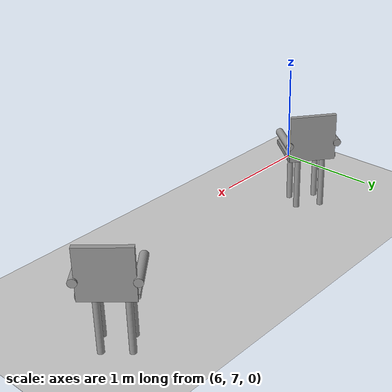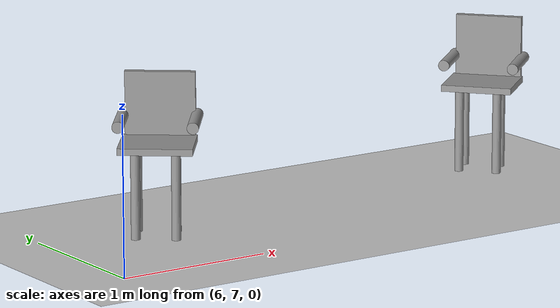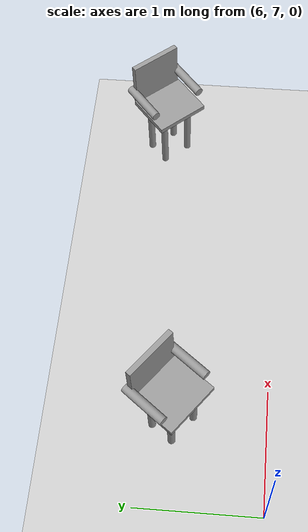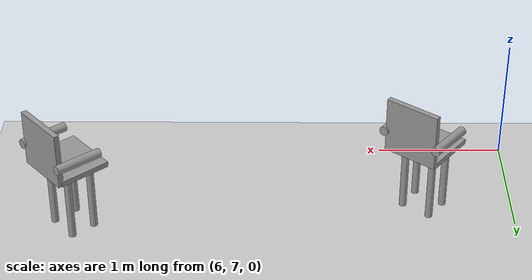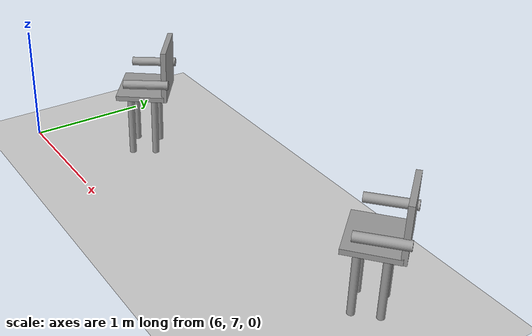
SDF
<sdf version="1.6">
 <world name="default">
  <model name="ground_plane">
   <static>1</static>
   <link name="link">
    <collision name="collision">
     <geometry><plane><normal>0 0 1</normal><size>100 100</size></plane></geometry>
     <surface>
      <contact><collide_bitmask>65535</collide_bitmask></contact>
      <friction><ode><mu>100</mu><mu2>50</mu2></ode></friction>
     </surface>
    </collision>
    <visual name="visual">
     <cast_shadows>0</cast_shadows>
     <geometry><plane><normal>0 0 1</normal><size>100 100</size></plane></geometry>
     <material>
      <script><uri>file://media/materials/scripts/gazebo.material</uri><name>Gazebo/Grey</name></script>
     </material>
    </visual>
   </link>
  </model>
  <model name="chair_clone_clone_0">
   <link name="link_4">
    <inertial>
     <mass>0.00194051</mass>
     <inertia>
      <ixx>5.14044e-05</ixx>
      <ixy>0</ixy>
      <ixz>0</ixz>
      <iyy>5.14044e-05</iyy>
      <iyz>0</iyz>
      <izz>8.34973e-07</izz>
     </inertia>
    </inertial>
    <pose>-0.140129 -0.127166 -0.209129 0 -0 0</pose>
    <visual name="visual">
     <geometry><cylinder><radius>0.0293355</radius><length>0.561516</length></cylinder></geometry>
     <material>
      <lighting>1</lighting>
      <script><uri>file://media/materials/scripts/gazebo.material</uri><name>Gazebo/Grey</name></script>
      <emissive>0 0 0 1</emissive>
     </material>
    </visual>
    <collision name="collision">
     <geometry><cylinder><radius>0.029336</radius><length>0.561516</length></cylinder></geometry>
     <surface>
      <friction>
       <ode><mu>1</mu><mu2>1</mu2><fdir1>0 0 0</fdir1><slip1>0</slip1><slip2>0</slip2></ode>
       <torsional>
        <coefficient>1</coefficient>
        <patch_radius>0</patch_radius>
        <surface_radius>0</surface_radius>
        <use_patch_radius>1</use_patch_radius>
        <ode><slip>0</slip></ode>
       </torsional>
      </friction>
      <bounce><restitution_coefficient>0</restitution_coefficient><threshold>1e+06</threshold></bounce>
      <contact>
       <collide_without_contact>0</collide_without_contact>
       <collide_without_contact_bitmask>1</collide_without_contact_bitmask>
       <collide_bitmask>1</collide_bitmask>
       <ode>
        <soft_cfm>0</soft_cfm>
        <soft_erp>0.2</soft_erp>
        <kp>1e+13</kp>
        <kd>1</kd>
        <max_vel>0.01</max_vel>
        <min_depth>0</min_depth>
       </ode>
       <bullet>
        <split_impulse>1</split_impulse>
        <split_impulse_penetration_threshold>-0.01</split_impulse_penetration_threshold>
        <soft_cfm>0</soft_cfm>
        <soft_erp>0.2</soft_erp>
        <kp>1e+13</kp>
        <kd>1</kd>
       </bullet>
      </contact>
     </surface>
    </collision>
   </link>
   <link name="link_4_clone">
    <inertial>
     <mass>0.00194051</mass>
     <inertia>
      <ixx>5.14044e-05</ixx>
      <ixy>0</ixy>
      <ixz>0</ixz>
      <iyy>5.14044e-05</iyy>
      <iyz>0</iyz>
      <izz>8.34973e-07</izz>
     </inertia>
    </inertial>
    <pose>-0.139565 0.126187 -0.209129 0 -0 0</pose>
    <visual name="visual">
     <geometry><cylinder><radius>0.0293355</radius><length>0.561516</length></cylinder></geometry>
     <material>
      <lighting>1</lighting>
      <script><uri>file://media/materials/scripts/gazebo.material</uri><name>Gazebo/Grey</name></script>
      <shader type="pixel"/>
      <emissive>0 0 0 1</emissive>
     </material>
    </visual>
    <collision name="collision">
     <geometry><cylinder><radius>0.029336</radius><length>0.561516</length></cylinder></geometry>
     <surface>
      <friction>
       <ode><mu>1</mu><mu2>1</mu2><fdir1>0 0 0</fdir1><slip1>0</slip1><slip2>0</slip2></ode>
       <torsional>
        <coefficient>1</coefficient>
        <patch_radius>0</patch_radius>
        <surface_radius>0</surface_radius>
        <use_patch_radius>1</use_patch_radius>
        <ode><slip>0</slip></ode>
       </torsional>
      </friction>
      <bounce><restitution_coefficient>0</restitution_coefficient><threshold>1e+06</threshold></bounce>
      <contact>
       <collide_without_contact>0</collide_without_contact>
       <collide_without_contact_bitmask>1</collide_without_contact_bitmask>
       <collide_bitmask>1</collide_bitmask>
       <ode>
        <soft_cfm>0</soft_cfm>
        <soft_erp>0.2</soft_erp>
        <kp>1e+13</kp>
        <kd>1</kd>
        <max_vel>0.01</max_vel>
        <min_depth>0</min_depth>
       </ode>
       <bullet>
        <split_impulse>1</split_impulse>
        <split_impulse_penetration_threshold>-0.01</split_impulse_penetration_threshold>
        <soft_cfm>0</soft_cfm>
        <soft_erp>0.2</soft_erp>
        <kp>1e+13</kp>
        <kd>1</kd>
       </bullet>
      </contact>
     </surface>
    </collision>
   </link>
   <link name="link_4_clone_0">
    <inertial>
     <mass>0.00194051</mass>
     <inertia>
      <ixx>5.14044e-05</ixx>
      <ixy>0</ixy>
      <ixz>0</ixz>
      <iyy>5.14044e-05</iyy>
      <iyz>0</iyz>
      <izz>8.34973e-07</izz>
     </inertia>
    </inertial>
    <pose>0.062929 0.13105 -0.209129 0 -0 0</pose>
    <visual name="visual">
     <geometry><cylinder><radius>0.0293355</radius><length>0.561516</length></cylinder></geometry>
     <material>
      <lighting>1</lighting>
      <script><uri>file://media/materials/scripts/gazebo.material</uri><name>Gazebo/Grey</name></script>
      <shader type="pixel"/>
      <emissive>0 0 0 1</emissive>
     </material>
    </visual>
    <collision name="collision">
     <geometry><cylinder><radius>0.029336</radius><length>0.561516</length></cylinder></geometry>
     <surface>
      <friction>
       <ode><mu>1</mu><mu2>1</mu2><fdir1>0 0 0</fdir1><slip1>0</slip1><slip2>0</slip2></ode>
       <torsional>
        <coefficient>1</coefficient>
        <patch_radius>0</patch_radius>
        <surface_radius>0</surface_radius>
        <use_patch_radius>1</use_patch_radius>
        <ode><slip>0</slip></ode>
       </torsional>
      </friction>
      <bounce><restitution_coefficient>0</restitution_coefficient><threshold>1e+06</threshold></bounce>
      <contact>
       <collide_without_contact>0</collide_without_contact>
       <collide_without_contact_bitmask>1</collide_without_contact_bitmask>
       <collide_bitmask>1</collide_bitmask>
       <ode>
        <soft_cfm>0</soft_cfm>
        <soft_erp>0.2</soft_erp>
        <kp>1e+13</kp>
        <kd>1</kd>
        <max_vel>0.01</max_vel>
        <min_depth>0</min_depth>
       </ode>
       <bullet>
        <split_impulse>1</split_impulse>
        <split_impulse_penetration_threshold>-0.01</split_impulse_penetration_threshold>
        <soft_cfm>0</soft_cfm>
        <soft_erp>0.2</soft_erp>
        <kp>1e+13</kp>
        <kd>1</kd>
       </bullet>
      </contact>
     </surface>
    </collision>
   </link>
   <link name="link_4_clone_1">
    <inertial>
     <mass>0.00194051</mass>
     <inertia>
      <ixx>5.14044e-05</ixx>
      <ixy>0</ixy>
      <ixz>0</ixz>
      <iyy>5.14044e-05</iyy>
      <iyz>0</iyz>
      <izz>8.34973e-07</izz>
     </inertia>
    </inertial>
    <pose>0.061641 -0.111934 -0.209129 0 -0 0</pose>
    <visual name="visual">
     <geometry><cylinder><radius>0.0293355</radius><length>0.561516</length></cylinder></geometry>
     <material>
      <lighting>1</lighting>
      <script><uri>file://media/materials/scripts/gazebo.material</uri><name>Gazebo/Grey</name></script>
      <shader type="pixel"/>
      <emissive>0 0 0 1</emissive>
     </material>
    </visual>
    <collision name="collision">
     <geometry><cylinder><radius>0.029336</radius><length>0.561516</length></cylinder></geometry>
     <surface>
      <friction>
       <ode><mu>1</mu><mu2>1</mu2><fdir1>0 0 0</fdir1><slip1>0</slip1><slip2>0</slip2></ode>
       <torsional>
        <coefficient>1</coefficient>
        <patch_radius>0</patch_radius>
        <surface_radius>0</surface_radius>
        <use_patch_radius>1</use_patch_radius>
        <ode><slip>0</slip></ode>
       </torsional>
      </friction>
      <bounce><restitution_coefficient>0</restitution_coefficient><threshold>1e+06</threshold></bounce>
      <contact>
       <collide_without_contact>0</collide_without_contact>
       <collide_without_contact_bitmask>1</collide_without_contact_bitmask>
       <collide_bitmask>1</collide_bitmask>
       <ode>
        <soft_cfm>0</soft_cfm>
        <soft_erp>0.2</soft_erp>
        <kp>1e+13</kp>
        <kd>1</kd>
        <max_vel>0.01</max_vel>
        <min_depth>0</min_depth>
       </ode>
       <bullet>
        <split_impulse>1</split_impulse>
        <split_impulse_penetration_threshold>-0.01</split_impulse_penetration_threshold>
        <soft_cfm>0</soft_cfm>
        <soft_erp>0.2</soft_erp>
        <kp>1e+13</kp>
        <kd>1</kd>
       </bullet>
      </contact>
     </surface>
    </collision>
   </link>
   <link name="link_5">
    <inertial>
     <mass>0.00816884</mass>
     <inertia>
      <ixx>0.00015002</ixx>
      <ixy>0</ixy>
      <ixz>0</ixz>
      <iyy>0.000115328</iyy>
      <iyz>0</iyz>
      <izz>0.000262862</izz>
     </inertia>
    </inertial>
    <pose>-0.041662 -0.005028 0.089077 0 -0 0</pose>
    <visual name="visual">
     <geometry><box><size>0.409378 0.467496 0.042729</size></box></geometry>
     <material>
      <lighting>1</lighting>
      <script><uri>file://media/materials/scripts/gazebo.material</uri><name>Gazebo/Grey</name></script>
      <emissive>0 0 0 1</emissive>
     </material>
    </visual>
    <collision name="collision">
     <geometry><box><size>0.409378 0.467496 0.042729</size></box></geometry>
     <surface>
      <friction>
       <ode><mu>1</mu><mu2>1</mu2><fdir1>0 0 0</fdir1><slip1>0</slip1><slip2>0</slip2></ode>
       <torsional>
        <coefficient>1</coefficient>
        <patch_radius>0</patch_radius>
        <surface_radius>0</surface_radius>
        <use_patch_radius>1</use_patch_radius>
        <ode><slip>0</slip></ode>
       </torsional>
      </friction>
      <bounce><restitution_coefficient>0</restitution_coefficient><threshold>1e+06</threshold></bounce>
      <contact>
       <collide_without_contact>0</collide_without_contact>
       <collide_without_contact_bitmask>1</collide_without_contact_bitmask>
       <collide_bitmask>1</collide_bitmask>
       <ode>
        <soft_cfm>0</soft_cfm>
        <soft_erp>0.2</soft_erp>
        <kp>1e+13</kp>
        <kd>1</kd>
        <max_vel>0.01</max_vel>
        <min_depth>0</min_depth>
       </ode>
       <bullet>
        <split_impulse>1</split_impulse>
        <split_impulse_penetration_threshold>-0.01</split_impulse_penetration_threshold>
        <soft_cfm>0</soft_cfm>
        <soft_erp>0.2</soft_erp>
        <kp>1e+13</kp>
        <kd>1</kd>
       </bullet>
      </contact>
     </surface>
    </collision>
   </link>
   <link name="link_6">
    <inertial>
     <mass>0.00855687</mass>
     <inertia>
      <ixx>0.000285159</ixx>
      <ixy>0</ixy>
      <ixz>0</ixz>
      <iyy>0.000146983</iyy>
      <iyz>0</iyz>
      <izz>0.000140925</izz>
     </inertia>
    </inertial>
    <pose>0.165697 -0.006458 0.287866 0 -0 0</pose>
    <visual name="visual">
     <geometry><box><size>0.0439 0.442383 0.451884</size></box></geometry>
     <material>
      <lighting>1</lighting>
      <script><uri>file://media/materials/scripts/gazebo.material</uri><name>Gazebo/Grey</name></script>
      <emissive>0 0 0 1</emissive>
     </material>
    </visual>
    <collision name="collision">
     <geometry><box><size>0.0439 0.442383 0.451884</size></box></geometry>
     <surface>
      <friction>
       <ode><mu>1</mu><mu2>1</mu2><fdir1>0 0 0</fdir1><slip1>0</slip1><slip2>0</slip2></ode>
       <torsional>
        <coefficient>1</coefficient>
        <patch_radius>0</patch_radius>
        <surface_radius>0</surface_radius>
        <use_patch_radius>1</use_patch_radius>
        <ode><slip>0</slip></ode>
       </torsional>
      </friction>
      <bounce><restitution_coefficient>0</restitution_coefficient><threshold>1e+06</threshold></bounce>
      <contact>
       <collide_without_contact>0</collide_without_contact>
       <collide_without_contact_bitmask>1</collide_without_contact_bitmask>
       <collide_bitmask>1</collide_bitmask>
       <ode>
        <soft_cfm>0</soft_cfm>
        <soft_erp>0.2</soft_erp>
        <kp>1e+13</kp>
        <kd>1</kd>
        <max_vel>0.01</max_vel>
        <min_depth>0</min_depth>
       </ode>
       <bullet>
        <split_impulse>1</split_impulse>
        <split_impulse_penetration_threshold>-0.01</split_impulse_penetration_threshold>
        <soft_cfm>0</soft_cfm>
        <soft_erp>0.2</soft_erp>
        <kp>1e+13</kp>
        <kd>1</kd>
       </bullet>
      </contact>
     </surface>
    </collision>
   </link>
   <link name="link_7">
    <inertial>
     <mass>0.00209129</mass>
     <inertia>
      <ixx>2.57536e-05</ixx>
      <ixy>0</ixy>
      <ixz>0</ixz>
      <iyy>2.57536e-05</iyy>
      <iyz>0</iyz>
      <izz>1.44551e-06</izz>
     </inertia>
    </inertial>
    <pose>0.0147 0.228665 0.230372 0 1.55081 0</pose>
    <visual name="visual">
     <geometry><cylinder><radius>0.0371808</radius><length>0.378984</length></cylinder></geometry>
     <material>
      <lighting>1</lighting>
      <script><uri>file://media/materials/scripts/gazebo.material</uri><name>Gazebo/Grey</name></script>
      <emissive>0 0 0 1</emissive>
     </material>
    </visual>
    <collision name="collision">
     <geometry><cylinder><radius>0.037181</radius><length>0.378984</length></cylinder></geometry>
     <surface>
      <friction>
       <ode><mu>1</mu><mu2>1</mu2><fdir1>0 0 0</fdir1><slip1>0</slip1><slip2>0</slip2></ode>
       <torsional>
        <coefficient>1</coefficient>
        <patch_radius>0</patch_radius>
        <surface_radius>0</surface_radius>
        <use_patch_radius>1</use_patch_radius>
        <ode><slip>0</slip></ode>
       </torsional>
      </friction>
      <bounce><restitution_coefficient>0</restitution_coefficient><threshold>1e+06</threshold></bounce>
      <contact>
       <collide_without_contact>0</collide_without_contact>
       <collide_without_contact_bitmask>1</collide_without_contact_bitmask>
       <collide_bitmask>1</collide_bitmask>
       <ode>
        <soft_cfm>0</soft_cfm>
        <soft_erp>0.2</soft_erp>
        <kp>1e+13</kp>
        <kd>1</kd>
        <max_vel>0.01</max_vel>
        <min_depth>0</min_depth>
       </ode>
       <bullet>
        <split_impulse>1</split_impulse>
        <split_impulse_penetration_threshold>-0.01</split_impulse_penetration_threshold>
        <soft_cfm>0</soft_cfm>
        <soft_erp>0.2</soft_erp>
        <kp>1e+13</kp>
        <kd>1</kd>
       </bullet>
      </contact>
     </surface>
    </collision>
   </link>
   <link name="link_7_clone">
    <inertial>
     <mass>0.00209129</mass>
     <inertia>
      <ixx>2.57536e-05</ixx>
      <ixy>0</ixy>
      <ixz>0</ixz>
      <iyy>2.57536e-05</iyy>
      <iyz>0</iyz>
      <izz>1.44551e-06</izz>
     </inertia>
    </inertial>
    <pose>0.01639 -0.235319 0.229201 0 1.55081 0</pose>
    <visual name="visual">
     <geometry><cylinder><radius>0.0371808</radius><length>0.378984</length></cylinder></geometry>
     <material>
      <lighting>1</lighting>
      <script><uri>file://media/materials/scripts/gazebo.material</uri><name>Gazebo/Grey</name></script>
      <shader type="pixel"/>
      <emissive>0 0 0 1</emissive>
     </material>
    </visual>
    <collision name="collision">
     <geometry><cylinder><radius>0.037181</radius><length>0.378984</length></cylinder></geometry>
     <surface>
      <friction>
       <ode><mu>1</mu><mu2>1</mu2><fdir1>0 0 0</fdir1><slip1>0</slip1><slip2>0</slip2></ode>
       <torsional>
        <coefficient>1</coefficient>
        <patch_radius>0</patch_radius>
        <surface_radius>0</surface_radius>
        <use_patch_radius>1</use_patch_radius>
        <ode><slip>0</slip></ode>
       </torsional>
      </friction>
      <bounce><restitution_coefficient>0</restitution_coefficient><threshold>1e+06</threshold></bounce>
      <contact>
       <collide_without_contact>0</collide_without_contact>
       <collide_without_contact_bitmask>1</collide_without_contact_bitmask>
       <collide_bitmask>1</collide_bitmask>
       <ode>
        <soft_cfm>0</soft_cfm>
        <soft_erp>0.2</soft_erp>
        <kp>1e+13</kp>
        <kd>1</kd>
        <max_vel>0.01</max_vel>
        <min_depth>0</min_depth>
       </ode>
       <bullet>
        <split_impulse>1</split_impulse>
        <split_impulse_penetration_threshold>-0.01</split_impulse_penetration_threshold>
        <soft_cfm>0</soft_cfm>
        <soft_erp>0.2</soft_erp>
        <kp>1e+13</kp>
        <kd>1</kd>
       </bullet>
      </contact>
     </surface>
    </collision>
   </link>
   <joint name="link_5_JOINT_2" type="fixed">
    <parent>link_5</parent>
    <child>link_4_clone_1</child>
    <physics>
     <ode><limit><cfm>0</cfm><erp>0.2</erp></limit><suspension><cfm>0</cfm><erp>0.2</erp></suspension></ode>
    </physics>
   </joint>
   <joint name="link_5_JOINT_3" type="fixed">
    <parent>link_5</parent>
    <child>link_4</child>
    <physics>
     <ode><limit><cfm>0</cfm><erp>0.2</erp></limit><suspension><cfm>0</cfm><erp>0.2</erp></suspension></ode>
    </physics>
   </joint>
   <joint name="link_5_JOINT_4" type="fixed">
    <parent>link_5</parent>
    <child>link_4_clone_0</child>
    <physics>
     <ode><limit><cfm>0</cfm><erp>0.2</erp></limit><suspension><cfm>0</cfm><erp>0.2</erp></suspension></ode>
    </physics>
   </joint>
   <joint name="link_5_JOINT_5" type="fixed">
    <parent>link_5</parent>
    <child>link_4_clone</child>
    <physics>
     <ode><limit><cfm>0</cfm><erp>0.2</erp></limit><suspension><cfm>0</cfm><erp>0.2</erp></suspension></ode>
    </physics>
   </joint>
   <joint name="link_5_JOINT_6" type="fixed">
    <parent>link_5</parent>
    <child>link_6</child>
    <physics>
     <ode><limit><cfm>0</cfm><erp>0.2</erp></limit><suspension><cfm>0</cfm><erp>0.2</erp></suspension></ode>
    </physics>
   </joint>
   <joint name="link_5_JOINT_7" type="fixed">
    <parent>link_5</parent>
    <child>link_7</child>
    <physics>
     <ode><limit><cfm>0</cfm><erp>0.2</erp></limit><suspension><cfm>0</cfm><erp>0.2</erp></suspension></ode>
    </physics>
   </joint>
   <joint name="link_5_JOINT_8" type="fixed">
    <parent>link_5</parent>
    <child>link_7_clone</child>
    <physics>
     <ode><limit><cfm>0</cfm><erp>0.2</erp></limit><suspension><cfm>0</cfm><erp>0.2</erp></suspension></ode>
    </physics>
   </joint>
   <static>0</static>
   <pose>9.46483 8.02642 0.489879 3e-06 3.2e-05 0.711045</pose>
  </model>
  <model name="chair_clone_clone_1">
   <link name="link_4">
    <inertial>
     <mass>0.00194051</mass>
     <inertia>
      <ixx>5.14044e-05</ixx>
      <ixy>0</ixy>
      <ixz>0</ixz>
      <iyy>5.14044e-05</iyy>
      <iyz>0</iyz>
      <izz>8.34973e-07</izz>
     </inertia>
    </inertial>
    <pose>-0.140129 -0.127166 -0.209129 0 -0 0</pose>
    <visual name="visual">
     <geometry><cylinder><radius>0.0293355</radius><length>0.561516</length></cylinder></geometry>
     <material>
      <lighting>1</lighting>
      <script><uri>file://media/materials/scripts/gazebo.material</uri><name>Gazebo/Grey</name></script>
      <emissive>0 0 0 1</emissive>
     </material>
    </visual>
    <collision name="collision">
     <geometry><cylinder><radius>0.029336</radius><length>0.561516</length></cylinder></geometry>
     <surface>
      <friction>
       <ode><mu>1</mu><mu2>1</mu2><fdir1>0 0 0</fdir1><slip1>0</slip1><slip2>0</slip2></ode>
       <torsional>
        <coefficient>1</coefficient>
        <patch_radius>0</patch_radius>
        <surface_radius>0</surface_radius>
        <use_patch_radius>1</use_patch_radius>
        <ode><slip>0</slip></ode>
       </torsional>
      </friction>
      <bounce><restitution_coefficient>0</restitution_coefficient><threshold>1e+06</threshold></bounce>
      <contact>
       <collide_without_contact>0</collide_without_contact>
       <collide_without_contact_bitmask>1</collide_without_contact_bitmask>
       <collide_bitmask>1</collide_bitmask>
       <ode>
        <soft_cfm>0</soft_cfm>
        <soft_erp>0.2</soft_erp>
        <kp>1e+13</kp>
        <kd>1</kd>
        <max_vel>0.01</max_vel>
        <min_depth>0</min_depth>
       </ode>
       <bullet>
        <split_impulse>1</split_impulse>
        <split_impulse_penetration_threshold>-0.01</split_impulse_penetration_threshold>
        <soft_cfm>0</soft_cfm>
        <soft_erp>0.2</soft_erp>
        <kp>1e+13</kp>
        <kd>1</kd>
       </bullet>
      </contact>
     </surface>
    </collision>
   </link>
   <link name="link_4_clone">
    <inertial>
     <mass>0.00194051</mass>
     <inertia>
      <ixx>5.14044e-05</ixx>
      <ixy>0</ixy>
      <ixz>0</ixz>
      <iyy>5.14044e-05</iyy>
      <iyz>0</iyz>
      <izz>8.34973e-07</izz>
     </inertia>
    </inertial>
    <pose>-0.139565 0.126187 -0.209129 0 -0 0</pose>
    <visual name="visual">
     <geometry><cylinder><radius>0.0293355</radius><length>0.561516</length></cylinder></geometry>
     <material>
      <lighting>1</lighting>
      <script><uri>file://media/materials/scripts/gazebo.material</uri><name>Gazebo/Grey</name></script>
      <shader type="pixel"/>
      <emissive>0 0 0 1</emissive>
     </material>
    </visual>
    <collision name="collision">
     <geometry><cylinder><radius>0.029336</radius><length>0.561516</length></cylinder></geometry>
     <surface>
      <friction>
       <ode><mu>1</mu><mu2>1</mu2><fdir1>0 0 0</fdir1><slip1>0</slip1><slip2>0</slip2></ode>
       <torsional>
        <coefficient>1</coefficient>
        <patch_radius>0</patch_radius>
        <surface_radius>0</surface_radius>
        <use_patch_radius>1</use_patch_radius>
        <ode><slip>0</slip></ode>
       </torsional>
      </friction>
      <bounce><restitution_coefficient>0</restitution_coefficient><threshold>1e+06</threshold></bounce>
      <contact>
       <collide_without_contact>0</collide_without_contact>
       <collide_without_contact_bitmask>1</collide_without_contact_bitmask>
       <collide_bitmask>1</collide_bitmask>
       <ode>
        <soft_cfm>0</soft_cfm>
        <soft_erp>0.2</soft_erp>
        <kp>1e+13</kp>
        <kd>1</kd>
        <max_vel>0.01</max_vel>
        <min_depth>0</min_depth>
       </ode>
       <bullet>
        <split_impulse>1</split_impulse>
        <split_impulse_penetration_threshold>-0.01</split_impulse_penetration_threshold>
        <soft_cfm>0</soft_cfm>
        <soft_erp>0.2</soft_erp>
        <kp>1e+13</kp>
        <kd>1</kd>
       </bullet>
      </contact>
     </surface>
    </collision>
   </link>
   <link name="link_4_clone_0">
    <inertial>
     <mass>0.00194051</mass>
     <inertia>
      <ixx>5.14044e-05</ixx>
      <ixy>0</ixy>
      <ixz>0</ixz>
      <iyy>5.14044e-05</iyy>
      <iyz>0</iyz>
      <izz>8.34973e-07</izz>
     </inertia>
    </inertial>
    <pose>0.062929 0.13105 -0.209129 0 -0 0</pose>
    <visual name="visual">
     <geometry><cylinder><radius>0.0293355</radius><length>0.561516</length></cylinder></geometry>
     <material>
      <lighting>1</lighting>
      <script><uri>file://media/materials/scripts/gazebo.material</uri><name>Gazebo/Grey</name></script>
      <shader type="pixel"/>
      <emissive>0 0 0 1</emissive>
     </material>
    </visual>
    <collision name="collision">
     <geometry><cylinder><radius>0.029336</radius><length>0.561516</length></cylinder></geometry>
     <surface>
      <friction>
       <ode><mu>1</mu><mu2>1</mu2><fdir1>0 0 0</fdir1><slip1>0</slip1><slip2>0</slip2></ode>
       <torsional>
        <coefficient>1</coefficient>
        <patch_radius>0</patch_radius>
        <surface_radius>0</surface_radius>
        <use_patch_radius>1</use_patch_radius>
        <ode><slip>0</slip></ode>
       </torsional>
      </friction>
      <bounce><restitution_coefficient>0</restitution_coefficient><threshold>1e+06</threshold></bounce>
      <contact>
       <collide_without_contact>0</collide_without_contact>
       <collide_without_contact_bitmask>1</collide_without_contact_bitmask>
       <collide_bitmask>1</collide_bitmask>
       <ode>
        <soft_cfm>0</soft_cfm>
        <soft_erp>0.2</soft_erp>
        <kp>1e+13</kp>
        <kd>1</kd>
        <max_vel>0.01</max_vel>
        <min_depth>0</min_depth>
       </ode>
       <bullet>
        <split_impulse>1</split_impulse>
        <split_impulse_penetration_threshold>-0.01</split_impulse_penetration_threshold>
        <soft_cfm>0</soft_cfm>
        <soft_erp>0.2</soft_erp>
        <kp>1e+13</kp>
        <kd>1</kd>
       </bullet>
      </contact>
     </surface>
    </collision>
   </link>
   <link name="link_4_clone_1">
    <inertial>
     <mass>0.00194051</mass>
     <inertia>
      <ixx>5.14044e-05</ixx>
      <ixy>0</ixy>
      <ixz>0</ixz>
      <iyy>5.14044e-05</iyy>
      <iyz>0</iyz>
      <izz>8.34973e-07</izz>
     </inertia>
    </inertial>
    <pose>0.061641 -0.111934 -0.209129 0 -0 0</pose>
    <visual name="visual">
     <geometry><cylinder><radius>0.0293355</radius><length>0.561516</length></cylinder></geometry>
     <material>
      <lighting>1</lighting>
      <script><uri>file://media/materials/scripts/gazebo.material</uri><name>Gazebo/Grey</name></script>
      <shader type="pixel"/>
      <emissive>0 0 0 1</emissive>
     </material>
    </visual>
    <collision name="collision">
     <geometry><cylinder><radius>0.029336</radius><length>0.561516</length></cylinder></geometry>
     <surface>
      <friction>
       <ode><mu>1</mu><mu2>1</mu2><fdir1>0 0 0</fdir1><slip1>0</slip1><slip2>0</slip2></ode>
       <torsional>
        <coefficient>1</coefficient>
        <patch_radius>0</patch_radius>
        <surface_radius>0</surface_radius>
        <use_patch_radius>1</use_patch_radius>
        <ode><slip>0</slip></ode>
       </torsional>
      </friction>
      <bounce><restitution_coefficient>0</restitution_coefficient><threshold>1e+06</threshold></bounce>
      <contact>
       <collide_without_contact>0</collide_without_contact>
       <collide_without_contact_bitmask>1</collide_without_contact_bitmask>
       <collide_bitmask>1</collide_bitmask>
       <ode>
        <soft_cfm>0</soft_cfm>
        <soft_erp>0.2</soft_erp>
        <kp>1e+13</kp>
        <kd>1</kd>
        <max_vel>0.01</max_vel>
        <min_depth>0</min_depth>
       </ode>
       <bullet>
        <split_impulse>1</split_impulse>
        <split_impulse_penetration_threshold>-0.01</split_impulse_penetration_threshold>
        <soft_cfm>0</soft_cfm>
        <soft_erp>0.2</soft_erp>
        <kp>1e+13</kp>
        <kd>1</kd>
       </bullet>
      </contact>
     </surface>
    </collision>
   </link>
   <link name="link_5">
    <inertial>
     <mass>0.00816884</mass>
     <inertia>
      <ixx>0.00015002</ixx>
      <ixy>0</ixy>
      <ixz>0</ixz>
      <iyy>0.000115328</iyy>
      <iyz>0</iyz>
      <izz>0.000262862</izz>
     </inertia>
    </inertial>
    <pose>-0.041662 -0.005028 0.089077 0 -0 0</pose>
    <visual name="visual">
     <geometry><box><size>0.409378 0.467496 0.042729</size></box></geometry>
     <material>
      <lighting>1</lighting>
      <script><uri>file://media/materials/scripts/gazebo.material</uri><name>Gazebo/Grey</name></script>
      <emissive>0 0 0 1</emissive>
     </material>
    </visual>
    <collision name="collision">
     <geometry><box><size>0.409378 0.467496 0.042729</size></box></geometry>
     <surface>
      <friction>
       <ode><mu>1</mu><mu2>1</mu2><fdir1>0 0 0</fdir1><slip1>0</slip1><slip2>0</slip2></ode>
       <torsional>
        <coefficient>1</coefficient>
        <patch_radius>0</patch_radius>
        <surface_radius>0</surface_radius>
        <use_patch_radius>1</use_patch_radius>
        <ode><slip>0</slip></ode>
       </torsional>
      </friction>
      <bounce><restitution_coefficient>0</restitution_coefficient><threshold>1e+06</threshold></bounce>
      <contact>
       <collide_without_contact>0</collide_without_contact>
       <collide_without_contact_bitmask>1</collide_without_contact_bitmask>
       <collide_bitmask>1</collide_bitmask>
       <ode>
        <soft_cfm>0</soft_cfm>
        <soft_erp>0.2</soft_erp>
        <kp>1e+13</kp>
        <kd>1</kd>
        <max_vel>0.01</max_vel>
        <min_depth>0</min_depth>
       </ode>
       <bullet>
        <split_impulse>1</split_impulse>
        <split_impulse_penetration_threshold>-0.01</split_impulse_penetration_threshold>
        <soft_cfm>0</soft_cfm>
        <soft_erp>0.2</soft_erp>
        <kp>1e+13</kp>
        <kd>1</kd>
       </bullet>
      </contact>
     </surface>
    </collision>
   </link>
   <link name="link_6">
    <inertial>
     <mass>0.00855687</mass>
     <inertia>
      <ixx>0.000285159</ixx>
      <ixy>0</ixy>
      <ixz>0</ixz>
      <iyy>0.000146983</iyy>
      <iyz>0</iyz>
      <izz>0.000140925</izz>
     </inertia>
    </inertial>
    <pose>0.165697 -0.006458 0.287866 0 -0 0</pose>
    <visual name="visual">
     <geometry><box><size>0.0439 0.442383 0.451884</size></box></geometry>
     <material>
      <lighting>1</lighting>
      <script><uri>file://media/materials/scripts/gazebo.material</uri><name>Gazebo/Grey</name></script>
      <emissive>0 0 0 1</emissive>
     </material>
    </visual>
    <collision name="collision">
     <geometry><box><size>0.0439 0.442383 0.451884</size></box></geometry>
     <surface>
      <friction>
       <ode><mu>1</mu><mu2>1</mu2><fdir1>0 0 0</fdir1><slip1>0</slip1><slip2>0</slip2></ode>
       <torsional>
        <coefficient>1</coefficient>
        <patch_radius>0</patch_radius>
        <surface_radius>0</surface_radius>
        <use_patch_radius>1</use_patch_radius>
        <ode><slip>0</slip></ode>
       </torsional>
      </friction>
      <bounce><restitution_coefficient>0</restitution_coefficient><threshold>1e+06</threshold></bounce>
      <contact>
       <collide_without_contact>0</collide_without_contact>
       <collide_without_contact_bitmask>1</collide_without_contact_bitmask>
       <collide_bitmask>1</collide_bitmask>
       <ode>
        <soft_cfm>0</soft_cfm>
        <soft_erp>0.2</soft_erp>
        <kp>1e+13</kp>
        <kd>1</kd>
        <max_vel>0.01</max_vel>
        <min_depth>0</min_depth>
       </ode>
       <bullet>
        <split_impulse>1</split_impulse>
        <split_impulse_penetration_threshold>-0.01</split_impulse_penetration_threshold>
        <soft_cfm>0</soft_cfm>
        <soft_erp>0.2</soft_erp>
        <kp>1e+13</kp>
        <kd>1</kd>
       </bullet>
      </contact>
     </surface>
    </collision>
   </link>
   <link name="link_7">
    <inertial>
     <mass>0.00209129</mass>
     <inertia>
      <ixx>2.57536e-05</ixx>
      <ixy>0</ixy>
      <ixz>0</ixz>
      <iyy>2.57536e-05</iyy>
      <iyz>0</iyz>
      <izz>1.44551e-06</izz>
     </inertia>
    </inertial>
    <pose>0.0147 0.228665 0.230372 0 1.55081 0</pose>
    <visual name="visual">
     <geometry><cylinder><radius>0.0371808</radius><length>0.378984</length></cylinder></geometry>
     <material>
      <lighting>1</lighting>
      <script><uri>file://media/materials/scripts/gazebo.material</uri><name>Gazebo/Grey</name></script>
      <emissive>0 0 0 1</emissive>
     </material>
    </visual>
    <collision name="collision">
     <geometry><cylinder><radius>0.037181</radius><length>0.378984</length></cylinder></geometry>
     <surface>
      <friction>
       <ode><mu>1</mu><mu2>1</mu2><fdir1>0 0 0</fdir1><slip1>0</slip1><slip2>0</slip2></ode>
       <torsional>
        <coefficient>1</coefficient>
        <patch_radius>0</patch_radius>
        <surface_radius>0</surface_radius>
        <use_patch_radius>1</use_patch_radius>
        <ode><slip>0</slip></ode>
       </torsional>
      </friction>
      <bounce><restitution_coefficient>0</restitution_coefficient><threshold>1e+06</threshold></bounce>
      <contact>
       <collide_without_contact>0</collide_without_contact>
       <collide_without_contact_bitmask>1</collide_without_contact_bitmask>
       <collide_bitmask>1</collide_bitmask>
       <ode>
        <soft_cfm>0</soft_cfm>
        <soft_erp>0.2</soft_erp>
        <kp>1e+13</kp>
        <kd>1</kd>
        <max_vel>0.01</max_vel>
        <min_depth>0</min_depth>
       </ode>
       <bullet>
        <split_impulse>1</split_impulse>
        <split_impulse_penetration_threshold>-0.01</split_impulse_penetration_threshold>
        <soft_cfm>0</soft_cfm>
        <soft_erp>0.2</soft_erp>
        <kp>1e+13</kp>
        <kd>1</kd>
       </bullet>
      </contact>
     </surface>
    </collision>
   </link>
   <link name="link_7_clone">
    <inertial>
     <mass>0.00209129</mass>
     <inertia>
      <ixx>2.57536e-05</ixx>
      <ixy>0</ixy>
      <ixz>0</ixz>
      <iyy>2.57536e-05</iyy>
      <iyz>0</iyz>
      <izz>1.44551e-06</izz>
     </inertia>
    </inertial>
    <pose>0.01639 -0.235319 0.229201 0 1.55081 0</pose>
    <visual name="visual">
     <geometry><cylinder><radius>0.0371808</radius><length>0.378984</length></cylinder></geometry>
     <material>
      <lighting>1</lighting>
      <script><uri>file://media/materials/scripts/gazebo.material</uri><name>Gazebo/Grey</name></script>
      <shader type="pixel"/>
      <emissive>0 0 0 1</emissive>
     </material>
    </visual>
    <collision name="collision">
     <geometry><cylinder><radius>0.037181</radius><length>0.378984</length></cylinder></geometry>
     <surface>
      <friction>
       <ode><mu>1</mu><mu2>1</mu2><fdir1>0 0 0</fdir1><slip1>0</slip1><slip2>0</slip2></ode>
       <torsional>
        <coefficient>1</coefficient>
        <patch_radius>0</patch_radius>
        <surface_radius>0</surface_radius>
        <use_patch_radius>1</use_patch_radius>
        <ode><slip>0</slip></ode>
       </torsional>
      </friction>
      <bounce><restitution_coefficient>0</restitution_coefficient><threshold>1e+06</threshold></bounce>
      <contact>
       <collide_without_contact>0</collide_without_contact>
       <collide_without_contact_bitmask>1</collide_without_contact_bitmask>
       <collide_bitmask>1</collide_bitmask>
       <ode>
        <soft_cfm>0</soft_cfm>
        <soft_erp>0.2</soft_erp>
        <kp>1e+13</kp>
        <kd>1</kd>
        <max_vel>0.01</max_vel>
        <min_depth>0</min_depth>
       </ode>
       <bullet>
        <split_impulse>1</split_impulse>
        <split_impulse_penetration_threshold>-0.01</split_impulse_penetration_threshold>
        <soft_cfm>0</soft_cfm>
        <soft_erp>0.2</soft_erp>
        <kp>1e+13</kp>
        <kd>1</kd>
       </bullet>
      </contact>
     </surface>
    </collision>
   </link>
   <joint name="link_5_JOINT_2" type="fixed">
    <parent>link_5</parent>
    <child>link_4_clone_1</child>
    <physics>
     <ode><limit><cfm>0</cfm><erp>0.2</erp></limit><suspension><cfm>0</cfm><erp>0.2</erp></suspension></ode>
    </physics>
   </joint>
   <joint name="link_5_JOINT_3" type="fixed">
    <parent>link_5</parent>
    <child>link_4</child>
    <physics>
     <ode><limit><cfm>0</cfm><erp>0.2</erp></limit><suspension><cfm>0</cfm><erp>0.2</erp></suspension></ode>
    </physics>
   </joint>
   <joint name="link_5_JOINT_4" type="fixed">
    <parent>link_5</parent>
    <child>link_4_clone_0</child>
    <physics>
     <ode><limit><cfm>0</cfm><erp>0.2</erp></limit><suspension><cfm>0</cfm><erp>0.2</erp></suspension></ode>
    </physics>
   </joint>
   <joint name="link_5_JOINT_5" type="fixed">
    <parent>link_5</parent>
    <child>link_4_clone</child>
    <physics>
     <ode><limit><cfm>0</cfm><erp>0.2</erp></limit><suspension><cfm>0</cfm><erp>0.2</erp></suspension></ode>
    </physics>
   </joint>
   <joint name="link_5_JOINT_6" type="fixed">
    <parent>link_5</parent>
    <child>link_6</child>
    <physics>
     <ode><limit><cfm>0</cfm><erp>0.2</erp></limit><suspension><cfm>0</cfm><erp>0.2</erp></suspension></ode>
    </physics>
   </joint>
   <joint name="link_5_JOINT_7" type="fixed">
    <parent>link_5</parent>
    <child>link_7</child>
    <physics>
     <ode><limit><cfm>0</cfm><erp>0.2</erp></limit><suspension><cfm>0</cfm><erp>0.2</erp></suspension></ode>
    </physics>
   </joint>
   <joint name="link_5_JOINT_8" type="fixed">
    <parent>link_5</parent>
    <child>link_7_clone</child>
    <physics>
     <ode><limit><cfm>0</cfm><erp>0.2</erp></limit><suspension><cfm>0</cfm><erp>0.2</erp></suspension></ode>
    </physics>
   </joint>
   <static>0</static>
   <pose>6.73037 7.77258 0.489879 5e-06 3.1e-05 0.91529</pose>
  </model>
 </world>
</sdf>
